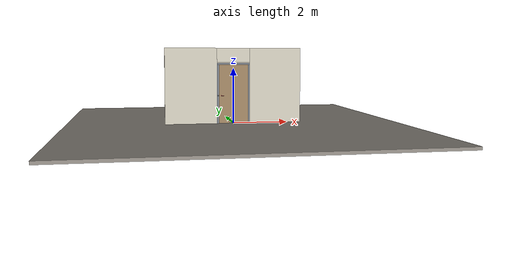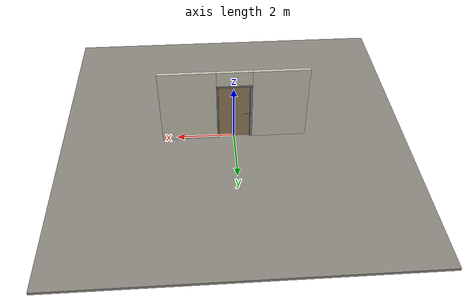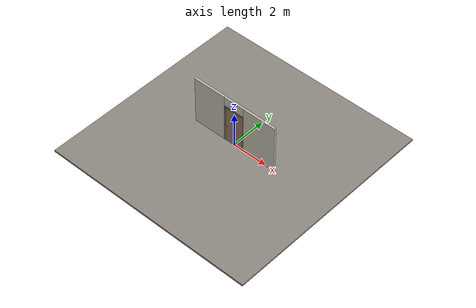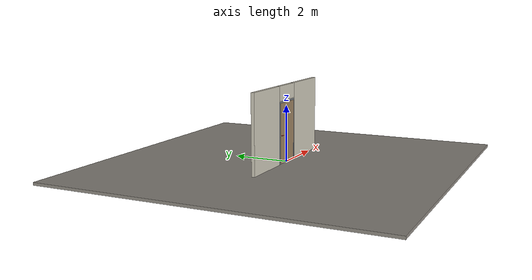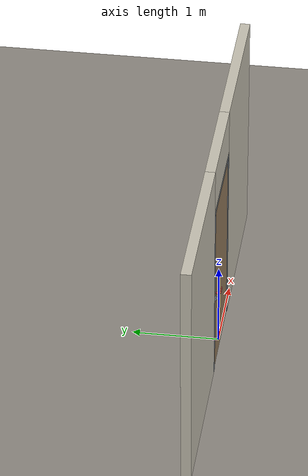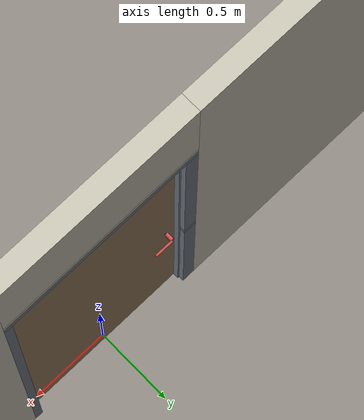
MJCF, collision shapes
<?xml version="1.0" ?>
<mujoco model="db0119_swing_single_full">
  <compiler angle="radian" meshdir="../../hardware" texturedir="../../textures" autolimits="true" inertiafromgeom="false"/>
  <option timestep="0.002" integrator="implicitfast" cone="elliptic" impratio="10" noslip_iterations="3">
    <flag multiccd="enable"/>
  </option>
  <size memory="16M"/>
  <default>
    <geom condim="4" solref="0.005 1" solimp="0.95 0.99 0.001"/>
    <joint solreflimit="0.005 1" solimplimit="0.95 0.99 0.001"/>
    <tendon solreflimit="0.005 1"/>
    <equality solref="0.002 1"/>
  </default>
  <visual>
    <headlight ambient="0.4 0.4 0.4" diffuse="0.7 0.7 0.7" specular="0.2 0.2 0.2"/>
    <quality shadowsize="4096"/>
    <map znear="0.01" zfar="60"/>
  </visual>
  <asset>
    <mesh name="hinge_e22b26c0c1" file="hinge_e22b26c0c1.obj"/>
    <mesh name="hinge_jamb_e1d088f8dc" file="hinge_jamb_e1d088f8dc.obj"/>
    <mesh name="lever_57205841c3" file="lever_57205841c3.obj"/>
    <material name="mat_floor" rgba="0.55 0.53 0.5 1" specular="0.2" shininess="0.15" reflectance="0"/>
    <material name="mat_wall" rgba="0.78 0.76 0.7 1" specular="0.2" shininess="0.1" reflectance="0"/>
    <material name="mat_leaf" rgba="0.585 0.484 0.359 1" specular="0.2" shininess="0.5" reflectance="0"/>
    <material name="mat_hinge" rgba="0.65 0.66 0.68 1" specular="0.74" shininess="0.5" reflectance="0.36"/>
    <material name="mat_op_black_matte_metal" rgba="0.05 0.05 0.05 1" specular="0.38" shininess="0.3" reflectance="0.12"/>
    <material name="mat_trim" rgba="0.85 0.66 0.3 1" specular="0.8" shininess="0.75" reflectance="0.4"/>
    <material name="mat_bolt" rgba="0.75 0.76 0.77 1" specular="0.8" shininess="0.65" reflectance="0.4"/>
    <material name="mat_frame" rgba="0.45 0.48 0.52 1" specular="0.32" shininess="0.6" reflectance="0.08"/>
    <material name="mat_seal" rgba="0.1 0.1 0.1 1" specular="0.2" shininess="0.1" reflectance="0"/>
    <texture name="skybox" type="skybox" builtin="gradient" rgb1="0.6 0.7 0.85" rgb2="0.9 0.92 0.95" width="256" height="256"/>
  </asset>
  <worldbody>
    <light name="sun" pos="1.5 -2.5 4" dir="-0.3 0.5 -0.8" directional="true" diffuse="0.8 0.8 0.8" specular="0.3 0.3 0.3" castshadow="true"/>
    <light name="fill" pos="-1.5 2.5 3" dir="0.3 -0.5 -0.7" directional="true" diffuse="0.35 0.35 0.4" castshadow="false"/>
    <camera name="robot_view" pos="0 -2.609312 1.812087" xyaxes="1 0 0 0 0.26963 0.962964" fovy="52"/>
    <camera name="far_view" pos="0 2.666313 1.812087" xyaxes="-1 0 0 0 -0.26963 0.962964" fovy="52"/>
    <camera name="iso" pos="-2.004737 -2.187262 2.234138" xyaxes="0.741536 -0.670913 0 0.242917 0.268487 0.932151" fovy="46"/>
    <camera name="detail_handle" pos="-0.187 -0.877 1.296" xyaxes="0.97561 0.219512 0 -0.070934 0.315262 0.94635" fovy="38"/>
    <geom name="floor" type="box" size="6 6 0.05" pos="0 0 -0.05" material="mat_floor" group="0" contype="1" conaffinity="1" friction="0.8 0.005 0.0001" density="2400"/>
    <geom name="wall_left" type="box" size="0.9415 0.0575 1.3735" pos="-1.5585 0.0285 1.3735" material="mat_wall" group="0" contype="1" conaffinity="1" friction="0.6 0.005 0.0001" density="800"/>
    <geom name="wall_right" type="box" size="0.9565 0.0575 1.3735" pos="1.5435 0.0285 1.3735" material="mat_wall" group="0" contype="1" conaffinity="1" friction="0.6 0.005 0.0001" density="800"/>
    <geom name="wall_header" type="box" size="0.602 0.0575 0.26" pos="-0.015 0.0285 2.487" material="mat_wall" group="0" contype="1" conaffinity="1" friction="0.6 0.005 0.0001" density="800"/>
    <geom name="hinge_0_jamb" type="mesh" mesh="hinge_jamb_e1d088f8dc" pos="0.534 -0.029 0.259" quat="0 0 1 0" material="mat_hinge" group="1" contype="0" conaffinity="0" density="7850"/>
    <geom name="hinge_1_jamb" type="mesh" mesh="hinge_jamb_e1d088f8dc" pos="0.534 -0.029 1.076" quat="0 0 1 0" material="mat_hinge" group="1" contype="0" conaffinity="0" density="7850"/>
    <geom name="hinge_2_jamb" type="mesh" mesh="hinge_jamb_e1d088f8dc" pos="0.534 -0.029 1.963" quat="0 0 1 0" material="mat_hinge" group="1" contype="0" conaffinity="0" density="7850"/>
    <geom name="jamb_hinge" type="box" size="0.025 0.0575 1.0735" pos="0.562 0.0285 1.0735" material="mat_frame" group="0" contype="1" conaffinity="1" friction="0.6 0.005 0.0001" density="300"/>
    <geom name="strike_1016_wall_n" type="box" size="0.04 0.03825 0.018" pos="-0.577 0.04775 1.016" material="mat_frame" group="0" contype="1" conaffinity="1" friction="0.6 0.005 0.0001" density="300"/>
    <geom name="strike_1016_wall_p" type="box" size="0.04 0.008 0.018" pos="-0.577 -0.0175 1.016" material="mat_frame" group="0" contype="1" conaffinity="1" friction="0.6 0.005 0.0001" density="300"/>
    <geom name="strike_1016_ramp" type="box" size="0.04 0.018028 0.018" pos="-0.580282 -0.018312 1.016" quat="0.957092 0 0 -0.289784" material="mat_frame" group="0" contype="1" conaffinity="1" friction="0.12 0.005 0.0001" density="300"/>
    <geom name="strike_1016_back" type="box" size="0.0285 0.0095 0.018" pos="-0.5885 0 1.016" material="mat_frame" group="0" contype="1" conaffinity="1" friction="0.6 0.005 0.0001" density="300"/>
    <geom name="jamb_strike_0" type="box" size="0.04 0.0575 0.499" pos="-0.577 0.0285 0.499" material="mat_frame" group="0" contype="1" conaffinity="1" friction="0.6 0.005 0.0001" density="300"/>
    <geom name="jamb_strike_1" type="box" size="0.04 0.0575 0.5565" pos="-0.577 0.0285 1.5905" material="mat_frame" group="0" contype="1" conaffinity="1" friction="0.6 0.005 0.0001" density="300"/>
    <geom name="jamb_head" type="box" size="0.602 0.0575 0.025" pos="-0.015 0.0285 2.172" material="mat_frame" group="0" contype="1" conaffinity="1" friction="0.6 0.005 0.0001" density="300"/>
    <geom name="head_stud" type="box" size="0.602 0.0575 0.015" pos="-0.015 0.0285 2.212" material="mat_wall" group="0" contype="1" conaffinity="1" friction="0.6 0.005 0.0001" density="500"/>
    <geom name="stop_hinge" type="box" size="0.0055 0.016 1.0735" pos="0.5315 0.0385 1.0735" material="mat_frame" group="0" contype="1" conaffinity="1" friction="0.6 0.005 0.0001" density="300"/>
    <geom name="stop_strike" type="box" size="0.0055 0.016 1.0735" pos="-0.5315 0.0385 1.0735" material="mat_frame" group="0" contype="1" conaffinity="1" friction="0.6 0.005 0.0001" density="300"/>
    <geom name="stop_head" type="box" size="0.537 0.016 0.0055" pos="0 0.0385 2.1415" material="mat_frame" group="0" contype="1" conaffinity="1" friction="0.6 0.005 0.0001" density="300"/>
    <geom name="seal_hinge" type="box" size="0.004 0.002 1.0735" pos="0.534 0.024 1.0735" material="mat_seal" group="1" contype="0" conaffinity="0" density="1100"/>
    <geom name="seal_strike" type="box" size="0.004 0.002 1.0735" pos="-0.534 0.024 1.0735" material="mat_seal" group="1" contype="0" conaffinity="0" density="1100"/>
    <geom name="seal_head" type="box" size="0.517 0.002 0.008" pos="0 0.024 2.135" material="mat_seal" group="1" contype="0" conaffinity="0" density="1100"/>
    <site name="approach_point" pos="0 -1.5 0" quat="1 0 0 0" size="0.05" rgba="0.2 0.9 0.2 0.5" group="4"/>
    <site name="goal_point" pos="0 1.5 0" quat="1 0 0 0" size="0.05" rgba="0.2 0.9 0.2 0.5" group="4"/>
    <site name="door_plane_center" pos="0 0 1.0735" quat="1 0 0 0" size="0.02" rgba="0.2 0.9 0.2 0.5" group="4"/>
    <body name="leaf" pos="0.537 0 0">
      <inertial pos="-0.531175 -0.000183 1.076224" mass="71.929851" quat="0.500135 -0.49963 0.500364 0.49987" diaginertia="6.97682401 27.380830454 34.333882554"/>
      <joint name="leaf_hinge" type="hinge" axis="0 0 1" pos="-0.003 -0.029 0" limited="true" range="0 1.745329" solreflimit="0.02 1" damping="0.54954" frictionloss="1.686507" armature="0.02"/>
      <geom name="leaf_slab" type="box" size="0.5335 0.022 1.067" pos="-0.5365 0 1.076" material="mat_leaf" group="0" contype="1" conaffinity="1" friction="0.4 0.005 0.0001" density="1"/>
      <geom name="hinge_0" type="mesh" mesh="hinge_e22b26c0c1" pos="-0.003 -0.029 0.259" quat="0 0 1 0" material="mat_hinge" group="1" contype="0" conaffinity="0" density="7850"/>
      <geom name="hinge_1" type="mesh" mesh="hinge_e22b26c0c1" pos="-0.003 -0.029 1.076" quat="0 0 1 0" material="mat_hinge" group="1" contype="0" conaffinity="0" density="7850"/>
      <geom name="hinge_2" type="mesh" mesh="hinge_e22b26c0c1" pos="-0.003 -0.029 1.963" quat="0 0 1 0" material="mat_hinge" group="1" contype="0" conaffinity="0" density="7850"/>
      <geom name="leaf_latch_bolt_faceplate" type="box" size="0.0006 0.014 0.028" pos="-1.0694 0 1.016" material="mat_bolt" group="1" contype="0" conaffinity="0" density="8500"/>
      <site name="leaf_edge_mid" pos="-1.07 0 1.067" quat="1 0 0 0" size="0.02" rgba="0.2 0.9 0.2 0.5" group="4"/>
      <body name="leaf_handle" pos="-1 0 1.016">
        <inertial pos="0.018425 0 0" mass="0.806444" quat="0 0.707107 0.707107 0" diaginertia="0.001006485 0.002593405 0.00349528"/>
        <joint name="leaf_handle_hinge" type="hinge" axis="0 1 0" limited="true" range="0 0.87" damping="0.212417" frictionloss="0.042" stiffness="1" springref="-0.35" armature="0.01"/>
        <geom name="leaf_handle_spindle" type="cylinder" size="0.006 0.03" pos="0 0 0" quat="0.707107 -0.707107 0 0" material="mat_op_black_matte_metal" group="1" contype="0" conaffinity="0" density="7850"/>
        <geom name="leaf_handle_lever_n" type="mesh" mesh="lever_57205841c3" pos="0 -0.022 0" quat="0 0 -0.707107 0.707107" material="mat_op_black_matte_metal" group="1" contype="0" conaffinity="0" density="3000"/>
        <geom name="leaf_handle_lever_col_n" type="capsule" size="0.007 0.053" pos="0.06 -0.077 0" quat="0.707107 0 0.707107 0" material="mat_op_black_matte_metal" group="3" contype="1" conaffinity="1" rgba="0.8 0.3 0.3 0.25" friction="0.7 0.01 0.0001" density="3000"/>
        <geom name="leaf_handle_hub_col_n" type="cylinder" size="0.012 0.022" pos="0 -0.052 0" quat="0.707107 -0.707107 0 0" material="mat_op_black_matte_metal" group="3" contype="1" conaffinity="1" rgba="0.8 0.3 0.3 0.25" friction="0.6 0.005 0.0001" density="3000"/>
        <geom name="leaf_handle_lever_p" type="mesh" mesh="lever_57205841c3" pos="0 0.022 0" quat="0 0 0.707107 0.707107" material="mat_op_black_matte_metal" group="1" contype="0" conaffinity="0" density="3000"/>
        <geom name="leaf_handle_lever_col_p" type="capsule" size="0.007 0.053" pos="0.06 0.077 0" quat="0.707107 0 0.707107 0" material="mat_op_black_matte_metal" group="3" contype="1" conaffinity="1" rgba="0.8 0.3 0.3 0.25" friction="0.7 0.01 0.0001" density="3000"/>
        <geom name="leaf_handle_hub_col_p" type="cylinder" size="0.012 0.022" pos="0 0.052 0" quat="0.707107 -0.707107 0 0" material="mat_op_black_matte_metal" group="3" contype="1" conaffinity="1" rgba="0.8 0.3 0.3 0.25" friction="0.6 0.005 0.0001" density="3000"/>
        <site name="leaf_handle_grip_n" pos="0.096 -0.077 0" quat="1 0 0 0" size="0.012" rgba="0.2 0.9 0.2 0.5" group="4"/>
        <site name="leaf_handle_grip_p" pos="0.096 0.077 0" quat="1 0 0 0" size="0.012" rgba="0.2 0.9 0.2 0.5" group="4"/>
      </body>
      <body name="leaf_latch_bolt" pos="-1.07 0 1.016">
        <inertial pos="0.0055 0 0" mass="0.074627" quat="0.92388 0.382683 0 0" diaginertia="0.000002271 0.000013255 0.000013255"/>
        <joint name="leaf_latch_bolt_slide" type="slide" axis="1 0 0" limited="true" range="0 0.019" damping="2" frictionloss="0.3" stiffness="550" springref="-0.01" armature="0.1"/>
        <geom name="leaf_latch_bolt_capsule" type="capsule" size="0.008 0.0165" pos="0.0055 0 0" quat="0.707107 0 -0.707107 0" material="mat_bolt" group="0" contype="1" conaffinity="1" friction="0.2 0.005 0.0001" density="8500"/>
      </body>
    </body>
  </worldbody>
  <tendon>
    <fixed name="leaf_latch_bolt_coupling" limited="true" range="0 10">
      <joint joint="leaf_latch_bolt_slide" coef="1"/>
      <joint joint="leaf_handle_hinge" coef="-0.023457"/>
    </fixed>
  </tendon>
  <sensor>
    <jointpos name="leaf_hinge_pos" joint="leaf_hinge"/>
    <jointvel name="leaf_hinge_vel" joint="leaf_hinge"/>
    <jointpos name="leaf_handle_hinge_pos" joint="leaf_handle_hinge"/>
    <jointvel name="leaf_handle_hinge_vel" joint="leaf_handle_hinge"/>
    <jointpos name="leaf_latch_bolt_slide_pos" joint="leaf_latch_bolt_slide"/>
    <jointvel name="leaf_latch_bolt_slide_vel" joint="leaf_latch_bolt_slide"/>
  </sensor>
</mujoco>
